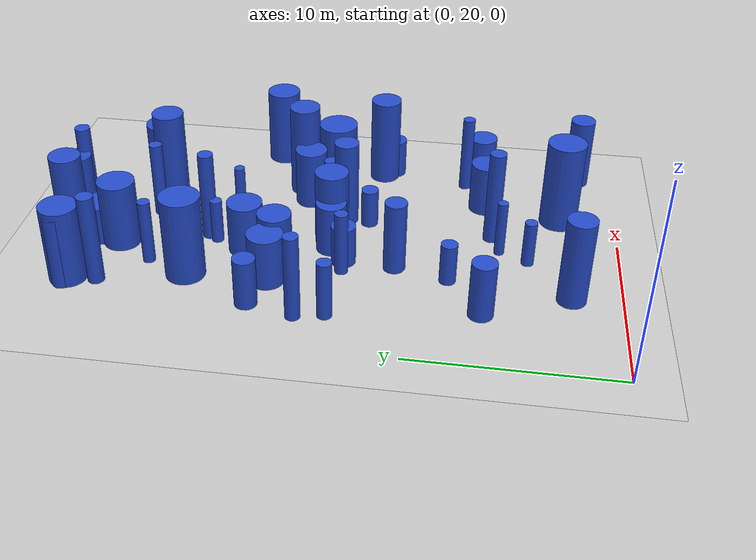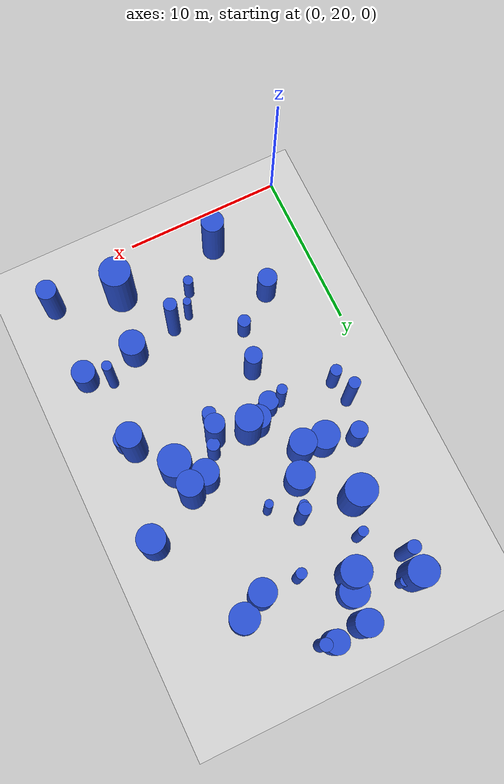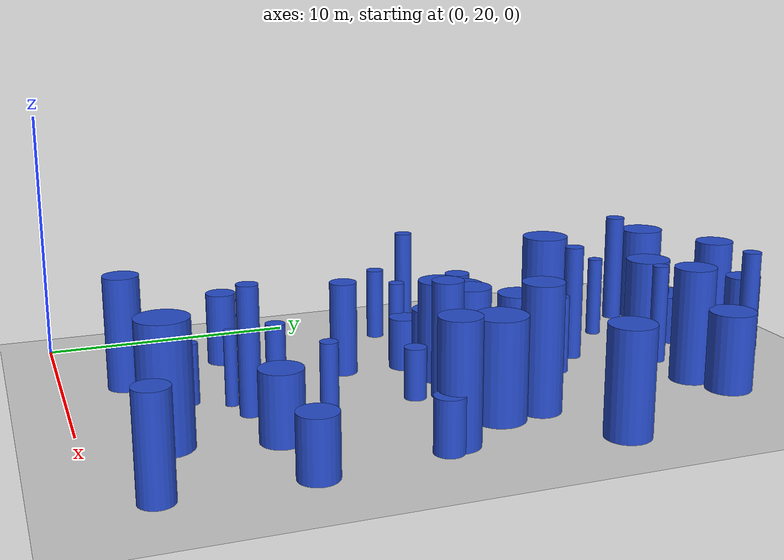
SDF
<sdf version="1.6">
 <world name="default">
  <model name="ground_plane">
   <static>1</static>
   <link name="link">
    <collision name="collision">
     <geometry><plane><normal>0 0 1</normal><size>100 100</size></plane></geometry>
     <surface><friction><ode><mu>100</mu><mu2>50</mu2></ode></friction></surface>
    </collision>
    <visual name="visual">
     <cast_shadows>0</cast_shadows>
     <geometry><plane><normal>0 0 1</normal><size>100 100</size></plane></geometry>
     <material>
      <script><uri>file://media/materials/scripts/gazebo.material</uri><name>Gazebo/Grey</name></script>
     </material>
    </visual>
   </link>
  </model>
  <model name="10">
   <static>0</static>
   <link name="link">
    <inertial>
     <mass>2</mass>
     <inertia>
      <ixx>0.774725</ixx>
      <ixy>0</ixy>
      <ixz>0</ixz>
      <iyy>0.774725</iyy>
      <iyz>0</iyz>
      <izz>0.189763</izz>
     </inertia>
    </inertial>
    <collision name="collision">
     <geometry><cylinder><length>2.01967</length><radius>0.435618</radius></cylinder></geometry>
     <surface><contact><collide_without_contact>1</collide_without_contact></contact></surface>
    </collision>
    <visual name="visual">
     <geometry><cylinder><length>2.01967</length><radius>0.435618</radius></cylinder></geometry>
     <material>
      <script><uri>file://media/materials/scripts/gazebo.material</uri><name>Gazebo/Blue</name></script>
     </material>
    </visual>
    <gravity>0</gravity>
   </link>
   <pose>10.4125 32.5588 1.00983 0 -0 0</pose>
  </model>
  <model name="17">
   <static>0</static>
   <link name="link">
    <inertial>
     <mass>2</mass>
     <inertia><ixx>1.53515</ixx><ixy>0</ixy><ixz>0</ixz><iyy>1.53515</iyy><iyz>0</iyz><izz>0.667989</izz></inertia>
    </inertial>
    <collision name="collision">
     <geometry><cylinder><length>2.68458</length><radius>0.817306</radius></cylinder></geometry>
     <surface><contact><collide_without_contact>1</collide_without_contact></contact></surface>
    </collision>
    <visual name="visual">
     <geometry><cylinder><length>2.68458</length><radius>0.817306</radius></cylinder></geometry>
     <material>
      <script><uri>file://media/materials/scripts/gazebo.material</uri><name>Gazebo/Blue</name></script>
     </material>
    </visual>
    <gravity>0</gravity>
   </link>
   <pose>12.7985 26.728 1.34229 0 -0 0</pose>
  </model>
  <model name="24">
   <static>0</static>
   <link name="link">
    <inertial>
     <mass>2</mass>
     <inertia><ixx>3.77941</ixx><ixy>0</ixy><ixz>0</ixz><iyy>3.77941</iyy><iyz>0</iyz><izz>0.148371</izz></inertia>
    </inertial>
    <collision name="collision">
     <geometry><cylinder><length>4.71502</length><radius>0.38519</radius></cylinder></geometry>
     <surface><contact><collide_without_contact>1</collide_without_contact></contact></surface>
    </collision>
    <visual name="visual">
     <geometry><cylinder><length>4.71502</length><radius>0.38519</radius></cylinder></geometry>
     <material>
      <script><uri>file://media/materials/scripts/gazebo.material</uri><name>Gazebo/Blue</name></script>
     </material>
    </visual>
    <gravity>0</gravity>
   </link>
   <pose>8.12711 40.4296 2.35751 0 -0 0</pose>
  </model>
  <model name="28">
   <static>0</static>
   <link name="link">
    <inertial>
     <mass>2</mass>
     <inertia><ixx>3.02201</ixx><ixy>0</ixy><ixz>0</ixz><iyy>3.02201</iyy><iyz>0</iyz><izz>0.698976</izz></inertia>
    </inertial>
    <collision name="collision">
     <geometry><cylinder><length>4.00439</length><radius>0.836048</radius></cylinder></geometry>
     <surface><contact><collide_without_contact>1</collide_without_contact></contact></surface>
    </collision>
    <visual name="visual">
     <geometry><cylinder><length>4.00439</length><radius>0.836048</radius></cylinder></geometry>
     <material>
      <script><uri>file://media/materials/scripts/gazebo.material</uri><name>Gazebo/Blue</name></script>
     </material>
    </visual>
    <gravity>0</gravity>
   </link>
   <pose>8.59451 34.2473 2.0022 0 -0 0</pose>
  </model>
  <model name="44">
   <static>0</static>
   <link name="link">
    <inertial>
     <mass>2</mass>
     <inertia><ixx>1.89444</ixx><ixy>0</ixy><ixz>0</ixz><iyy>1.89444</iyy><iyz>0</iyz><izz>0.104986</izz></inertia>
    </inertial>
    <collision name="collision">
     <geometry><cylinder><length>3.32441</length><radius>0.324016</radius></cylinder></geometry>
     <surface><contact><collide_without_contact>1</collide_without_contact></contact></surface>
    </collision>
    <visual name="visual">
     <geometry><cylinder><length>3.32441</length><radius>0.324016</radius></cylinder></geometry>
     <material>
      <script><uri>file://media/materials/scripts/gazebo.material</uri><name>Gazebo/Blue</name></script>
     </material>
    </visual>
    <gravity>0</gravity>
   </link>
   <pose>6.01162 33.3985 1.6622 0 -0 0</pose>
  </model>
  <model name="45">
   <static>0</static>
   <link name="link">
    <inertial>
     <mass>2</mass>
     <inertia>
      <ixx>0.842287</ixx>
      <ixy>0</ixy>
      <ixz>0</ixz>
      <iyy>0.842287</iyy>
      <iyz>0</iyz>
      <izz>0.166231</izz>
     </inertia>
    </inertial>
    <collision name="collision">
     <geometry><cylinder><length>2.13425</length><radius>0.407715</radius></cylinder></geometry>
     <surface><contact><collide_without_contact>1</collide_without_contact></contact></surface>
    </collision>
    <visual name="visual">
     <geometry><cylinder><length>2.13425</length><radius>0.407715</radius></cylinder></geometry>
     <material>
      <script><uri>file://media/materials/scripts/gazebo.material</uri><name>Gazebo/Blue</name></script>
     </material>
    </visual>
    <gravity>0</gravity>
   </link>
   <pose>5.99403 28.261 1.06713 0 -0 0</pose>
  </model>
  <model name="47">
   <static>0</static>
   <link name="link">
    <inertial>
     <mass>2</mass>
     <inertia><ixx>4.39041</ixx><ixy>0</ixy><ixz>0</ixz><iyy>4.39041</iyy><iyz>0</iyz><izz>0.626142</izz></inertia>
    </inertial>
    <collision name="collision">
     <geometry><cylinder><length>4.94611</length><radius>0.791291</radius></cylinder></geometry>
     <surface><contact><collide_without_contact>1</collide_without_contact></contact></surface>
    </collision>
    <visual name="visual">
     <geometry><cylinder><length>4.94611</length><radius>0.791291</radius></cylinder></geometry>
     <material>
      <script><uri>file://media/materials/scripts/gazebo.material</uri><name>Gazebo/Blue</name></script>
     </material>
    </visual>
    <gravity>0</gravity>
   </link>
   <pose>13.3403 36.3856 2.47306 0 -0 0</pose>
  </model>
  <model name="51">
   <static>0</static>
   <link name="link">
    <inertial>
     <mass>2</mass>
     <inertia><ixx>2.45508</ixx><ixy>0</ixy><ixz>0</ixz><iyy>2.45508</iyy><iyz>0</iyz><izz>0.2284</izz></inertia>
    </inertial>
    <collision name="collision">
     <geometry><cylinder><length>3.7477</length><radius>0.477912</radius></cylinder></geometry>
     <surface><contact><collide_without_contact>1</collide_without_contact></contact></surface>
    </collision>
    <visual name="visual">
     <geometry><cylinder><length>3.7477</length><radius>0.477912</radius></cylinder></geometry>
     <material>
      <script><uri>file://media/materials/scripts/gazebo.material</uri><name>Gazebo/Blue</name></script>
     </material>
    </visual>
    <gravity>0</gravity>
   </link>
   <pose>3.10571 46.4389 1.87385 0 -0 0</pose>
  </model>
  <model name="59">
   <static>0</static>
   <link name="link">
    <inertial>
     <mass>2</mass>
     <inertia><ixx>3.92698</ixx><ixy>0</ixy><ixz>0</ixz><iyy>3.92698</iyy><iyz>0</iyz><izz>0.61693</izz></inertia>
    </inertial>
    <collision name="collision">
     <geometry><cylinder><length>4.65952</length><radius>0.785449</radius></cylinder></geometry>
     <surface><contact><collide_without_contact>1</collide_without_contact></contact></surface>
    </collision>
    <visual name="visual">
     <geometry><cylinder><length>4.65952</length><radius>0.785449</radius></cylinder></geometry>
     <material>
      <script><uri>file://media/materials/scripts/gazebo.material</uri><name>Gazebo/Blue</name></script>
     </material>
    </visual>
    <gravity>0</gravity>
   </link>
   <pose>15.2975 32.3059 2.32976 0 -0 0</pose>
  </model>
  <model name="60">
   <static>0</static>
   <link name="link">
    <inertial>
     <mass>2</mass>
     <inertia><ixx>1.93141</ixx><ixy>0</ixy><ixz>0</ixz><iyy>1.93141</iyy><iyz>0</iyz><izz>0.684843</izz></inertia>
    </inertial>
    <collision name="collision">
     <geometry><cylinder><length>3.08771</length><radius>0.827552</radius></cylinder></geometry>
     <surface><contact><collide_without_contact>1</collide_without_contact></contact></surface>
    </collision>
    <visual name="visual">
     <geometry><cylinder><length>3.08771</length><radius>0.827552</radius></cylinder></geometry>
     <material>
      <script><uri>file://media/materials/scripts/gazebo.material</uri><name>Gazebo/Blue</name></script>
     </material>
    </visual>
    <gravity>0</gravity>
   </link>
   <pose>12.1888 35.8743 1.54386 0 -0 0</pose>
  </model>
  <model name="67">
   <static>0</static>
   <link name="link">
    <inertial>
     <mass>2</mass>
     <inertia><ixx>3.83548</ixx><ixy>0</ixy><ixz>0</ixz><iyy>3.83548</iyy><iyz>0</iyz><izz>0.673844</izz></inertia>
    </inertial>
    <collision name="collision">
     <geometry><cylinder><length>4.58163</length><radius>0.82088</radius></cylinder></geometry>
     <surface><contact><collide_without_contact>1</collide_without_contact></contact></surface>
    </collision>
    <visual name="visual">
     <geometry><cylinder><length>4.58163</length><radius>0.82088</radius></cylinder></geometry>
     <material>
      <script><uri>file://media/materials/scripts/gazebo.material</uri><name>Gazebo/Blue</name></script>
     </material>
    </visual>
    <gravity>0</gravity>
   </link>
   <pose>12.2633 43.5245 2.29082 0 -0 0</pose>
  </model>
  <model name="70">
   <static>0</static>
   <link name="link">
    <inertial>
     <mass>2</mass>
     <inertia>
      <ixx>1.68909</ixx>
      <ixy>0</ixy>
      <ixz>0</ixz>
      <iyy>1.68909</iyy>
      <iyz>0</iyz>
      <izz>0.0711109</izz>
     </inertia>
    </inertial>
    <collision name="collision">
     <geometry><cylinder><length>3.14979</length><radius>0.266666</radius></cylinder></geometry>
     <surface><contact><collide_without_contact>1</collide_without_contact></contact></surface>
    </collision>
    <visual name="visual">
     <geometry><cylinder><length>3.14979</length><radius>0.266666</radius></cylinder></geometry>
     <material>
      <script><uri>file://media/materials/scripts/gazebo.material</uri><name>Gazebo/Blue</name></script>
     </material>
    </visual>
    <gravity>0</gravity>
   </link>
   <pose>9.67754 39.1381 1.5749 0 -0 0</pose>
  </model>
  <model name="77">
   <static>0</static>
   <link name="link">
    <inertial>
     <mass>2</mass>
     <inertia><ixx>3.29642</ixx><ixy>0</ixy><ixz>0</ixz><iyy>3.29642</iyy><iyz>0</iyz><izz>0.149809</izz></inertia>
    </inertial>
    <collision name="collision">
     <geometry><cylinder><length>4.39648</length><radius>0.387051</radius></cylinder></geometry>
     <surface><contact><collide_without_contact>1</collide_without_contact></contact></surface>
    </collision>
    <visual name="visual">
     <geometry><cylinder><length>4.39648</length><radius>0.387051</radius></cylinder></geometry>
     <material>
      <script><uri>file://media/materials/scripts/gazebo.material</uri><name>Gazebo/Blue</name></script>
     </material>
    </visual>
    <gravity>0</gravity>
   </link>
   <pose>10.3762 47.5174 2.19824 0 -0 0</pose>
  </model>
  <model name="85">
   <static>0</static>
   <link name="link">
    <inertial>
     <mass>2</mass>
     <inertia><ixx>1.16177</ixx><ixy>0</ixy><ixz>0</ixz><iyy>1.16177</iyy><iyz>0</iyz><izz>0.543841</izz></inertia>
    </inertial>
    <collision name="collision">
     <geometry><cylinder><length>2.31065</length><radius>0.737455</radius></cylinder></geometry>
     <surface><contact><collide_without_contact>1</collide_without_contact></contact></surface>
    </collision>
    <visual name="visual">
     <geometry><cylinder><length>2.31065</length><radius>0.737455</radius></cylinder></geometry>
     <material>
      <script><uri>file://media/materials/scripts/gazebo.material</uri><name>Gazebo/Blue</name></script>
     </material>
    </visual>
    <gravity>0</gravity>
   </link>
   <pose>16.1913 27.0229 1.15532 0 -0 0</pose>
  </model>
  <model name="88">
   <static>0</static>
   <link name="link">
    <inertial>
     <mass>2</mass>
     <inertia><ixx>2.86237</ixx><ixy>0</ixy><ixz>0</ixz><iyy>2.86237</iyy><iyz>0</iyz><izz>0.098513</izz></inertia>
    </inertial>
    <collision name="collision">
     <geometry><cylinder><length>4.10837</length><radius>0.313868</radius></cylinder></geometry>
     <surface><contact><collide_without_contact>1</collide_without_contact></contact></surface>
    </collision>
    <visual name="visual">
     <geometry><cylinder><length>4.10837</length><radius>0.313868</radius></cylinder></geometry>
     <material>
      <script><uri>file://media/materials/scripts/gazebo.material</uri><name>Gazebo/Blue</name></script>
     </material>
    </visual>
    <gravity>0</gravity>
   </link>
   <pose>14.7797 27.8503 2.05418 0 -0 0</pose>
  </model>
  <model name="95">
   <static>0</static>
   <link name="link">
    <inertial>
     <mass>2</mass>
     <inertia><ixx>2.62375</ixx><ixy>0</ixy><ixz>0</ixz><iyy>2.62375</iyy><iyz>0</iyz><izz>0.398352</izz></inertia>
    </inertial>
    <collision name="collision">
     <geometry><cylinder><length>3.81411</length><radius>0.631151</radius></cylinder></geometry>
     <surface><contact><collide_without_contact>1</collide_without_contact></contact></surface>
    </collision>
    <visual name="visual">
     <geometry><cylinder><length>3.81411</length><radius>0.631151</radius></cylinder></geometry>
     <material>
      <script><uri>file://media/materials/scripts/gazebo.material</uri><name>Gazebo/Blue</name></script>
     </material>
    </visual>
    <gravity>0</gravity>
   </link>
   <pose>16.1446 21.8435 1.90705 0 -0 0</pose>
  </model>
  <model name="103">
   <static>0</static>
   <link name="link">
    <inertial>
     <mass>2</mass>
     <inertia><ixx>2.52847</ixx><ixy>0</ixy><ixz>0</ixz><iyy>2.52847</iyy><iyz>0</iyz><izz>0.874715</izz></inertia>
    </inertial>
    <collision name="collision">
     <geometry><cylinder><length>3.54213</length><radius>0.935262</radius></cylinder></geometry>
     <surface><contact><collide_without_contact>1</collide_without_contact></contact></surface>
    </collision>
    <visual name="visual">
     <geometry><cylinder><length>3.54213</length><radius>0.935262</radius></cylinder></geometry>
     <material>
      <script><uri>file://media/materials/scripts/gazebo.material</uri><name>Gazebo/Blue</name></script>
     </material>
    </visual>
    <gravity>0</gravity>
   </link>
   <pose>6.94051 44.7004 1.77107 0 -0 0</pose>
  </model>
  <model name="105">
   <static>0</static>
   <link name="link">
    <inertial>
     <mass>2</mass>
     <inertia><ixx>3.61232</ixx><ixy>0</ixy><ixz>0</ixz><iyy>3.61232</iyy><iyz>0</iyz><izz>0.498938</izz></inertia>
    </inertial>
    <collision name="collision">
     <geometry><cylinder><length>4.49189</length><radius>0.706356</radius></cylinder></geometry>
     <surface><contact><collide_without_contact>1</collide_without_contact></contact></surface>
    </collision>
    <visual name="visual">
     <geometry><cylinder><length>4.49189</length><radius>0.706356</radius></cylinder></geometry>
     <material>
      <script><uri>file://media/materials/scripts/gazebo.material</uri><name>Gazebo/Blue</name></script>
     </material>
    </visual>
    <gravity>0</gravity>
   </link>
   <pose>5.34761 22.4274 2.24595 0 -0 0</pose>
  </model>
  <model name="109">
   <static>0</static>
   <link name="link">
    <inertial>
     <mass>2</mass>
     <inertia>
      <ixx>0.949774</ixx>
      <ixy>0</ixy>
      <ixz>0</ixz>
      <iyy>0.949774</iyy>
      <iyz>0</iyz>
      <izz>0.0924293</izz>
     </inertia>
    </inertial>
    <collision name="collision">
     <geometry><cylinder><length>2.32838</length><radius>0.304022</radius></cylinder></geometry>
     <surface><contact><collide_without_contact>1</collide_without_contact></contact></surface>
    </collision>
    <visual name="visual">
     <geometry><cylinder><length>2.32838</length><radius>0.304022</radius></cylinder></geometry>
     <material>
      <script><uri>file://media/materials/scripts/gazebo.material</uri><name>Gazebo/Blue</name></script>
     </material>
    </visual>
    <gravity>0</gravity>
   </link>
   <pose>7.77465 39.9579 1.16419 0 -0 0</pose>
  </model>
  <model name="111">
   <static>0</static>
   <link name="link">
    <inertial>
     <mass>2</mass>
     <inertia><ixx>1.46807</ixx><ixy>0</ixy><ixz>0</ixz><iyy>1.46807</iyy><iyz>0</iyz><izz>0.571442</izz></inertia>
    </inertial>
    <collision name="collision">
     <geometry><cylinder><length>2.66347</length><radius>0.755938</radius></cylinder></geometry>
     <surface><contact><collide_without_contact>1</collide_without_contact></contact></surface>
    </collision>
    <visual name="visual">
     <geometry><cylinder><length>2.66347</length><radius>0.755938</radius></cylinder></geometry>
     <material>
      <script><uri>file://media/materials/scripts/gazebo.material</uri><name>Gazebo/Blue</name></script>
     </material>
    </visual>
    <gravity>0</gravity>
   </link>
   <pose>7.89645 34.1686 1.33174 0 -0 0</pose>
  </model>
  <model name="112">
   <static>0</static>
   <link name="link">
    <inertial>
     <mass>2</mass>
     <inertia><ixx>1.24524</ixx><ixy>0</ixy><ixz>0</ixz><iyy>1.24524</iyy><iyz>0</iyz><izz>0.298264</izz></inertia>
    </inertial>
    <collision name="collision">
     <geometry><cylinder><length>2.56449</length><radius>0.546136</radius></cylinder></geometry>
     <surface><contact><collide_without_contact>1</collide_without_contact></contact></surface>
    </collision>
    <visual name="visual">
     <geometry><cylinder><length>2.56449</length><radius>0.546136</radius></cylinder></geometry>
     <material>
      <script><uri>file://media/materials/scripts/gazebo.material</uri><name>Gazebo/Blue</name></script>
     </material>
    </visual>
    <gravity>0</gravity>
   </link>
   <pose>2.86458 37.4236 1.28225 0 -0 0</pose>
  </model>
  <model name="115">
   <static>0</static>
   <link name="link">
    <inertial>
     <mass>2</mass>
     <inertia><ixx>3.6437</ixx><ixy>0</ixy><ixz>0</ixz><iyy>3.6437</iyy><iyz>0</iyz><izz>0.381318</izz></inertia>
    </inertial>
    <collision name="collision">
     <geometry><cylinder><length>4.55173</length><radius>0.61751</radius></cylinder></geometry>
     <surface><contact><collide_without_contact>1</collide_without_contact></contact></surface>
    </collision>
    <visual name="visual">
     <geometry><cylinder><length>4.55173</length><radius>0.61751</radius></cylinder></geometry>
     <material>
      <script><uri>file://media/materials/scripts/gazebo.material</uri><name>Gazebo/Blue</name></script>
     </material>
    </visual>
    <gravity>0</gravity>
   </link>
   <pose>10.5925 33.7909 2.27586 0 -0 0</pose>
  </model>
  <model name="119">
   <static>0</static>
   <link name="link">
    <inertial>
     <mass>2</mass>
     <inertia><ixx>4.1708</ixx><ixy>0</ixy><ixz>0</ixz><iyy>4.1708</iyy><iyz>0</iyz><izz>0.167894</izz></inertia>
    </inertial>
    <collision name="collision">
     <geometry><cylinder><length>4.95188</length><radius>0.409748</radius></cylinder></geometry>
     <surface><contact><collide_without_contact>1</collide_without_contact></contact></surface>
    </collision>
    <visual name="visual">
     <geometry><cylinder><length>4.95188</length><radius>0.409748</radius></cylinder></geometry>
     <material>
      <script><uri>file://media/materials/scripts/gazebo.material</uri><name>Gazebo/Blue</name></script>
     </material>
    </visual>
    <gravity>0</gravity>
   </link>
   <pose>9.91773 26.2895 2.47594 0 -0 0</pose>
  </model>
  <model name="124">
   <static>0</static>
   <link name="link">
    <inertial>
     <mass>2</mass>
     <inertia><ixx>1.56828</ixx><ixy>0</ixy><ixz>0</ixz><iyy>1.56828</iyy><iyz>0</iyz><izz>0.792169</izz></inertia>
    </inertial>
    <collision name="collision">
     <geometry><cylinder><length>2.65201</length><radius>0.890039</radius></cylinder></geometry>
     <surface><contact><collide_without_contact>1</collide_without_contact></contact></surface>
    </collision>
    <visual name="visual">
     <geometry><cylinder><length>2.65201</length><radius>0.890039</radius></cylinder></geometry>
     <material>
      <script><uri>file://media/materials/scripts/gazebo.material</uri><name>Gazebo/Blue</name></script>
     </material>
    </visual>
    <gravity>0</gravity>
   </link>
   <pose>4.8166 36.845 1.32601 0 -0 0</pose>
  </model>
  <model name="127">
   <static>0</static>
   <link name="link">
    <inertial>
     <mass>2</mass>
     <inertia><ixx>3.22287</ixx><ixy>0</ixy><ixz>0</ixz><iyy>3.22287</iyy><iyz>0</iyz><izz>0.762799</izz></inertia>
    </inertial>
    <collision name="collision">
     <geometry><cylinder><length>4.12902</length><radius>0.873384</radius></cylinder></geometry>
     <surface><contact><collide_without_contact>1</collide_without_contact></contact></surface>
    </collision>
    <visual name="visual">
     <geometry><cylinder><length>4.12902</length><radius>0.873384</radius></cylinder></geometry>
     <material>
      <script><uri>file://media/materials/scripts/gazebo.material</uri><name>Gazebo/Blue</name></script>
     </material>
    </visual>
    <gravity>0</gravity>
   </link>
   <pose>16.6059 38.1571 2.06451 0 -0 0</pose>
  </model>
  <model name="132">
   <static>0</static>
   <link name="link">
    <inertial>
     <mass>2</mass>
     <inertia><ixx>1.61534</ixx><ixy>0</ixy><ixz>0</ixz><iyy>1.61534</iyy><iyz>0</iyz><izz>0.365131</izz></inertia>
    </inertial>
    <collision name="collision">
     <geometry><cylinder><length>2.93201</length><radius>0.604261</radius></cylinder></geometry>
     <surface><contact><collide_without_contact>1</collide_without_contact></contact></surface>
    </collision>
    <visual name="visual">
     <geometry><cylinder><length>2.93201</length><radius>0.604261</radius></cylinder></geometry>
     <material>
      <script><uri>file://media/materials/scripts/gazebo.material</uri><name>Gazebo/Blue</name></script>
     </material>
    </visual>
    <gravity>0</gravity>
   </link>
   <pose>3.6225 26.5939 1.466 0 -0 0</pose>
  </model>
  <model name="136">
   <static>0</static>
   <link name="link">
    <inertial>
     <mass>2</mass>
     <inertia><ixx>3.70332</ixx><ixy>0</ixy><ixz>0</ixz><iyy>3.70332</iyy><iyz>0</iyz><izz>0.955801</izz></inertia>
    </inertial>
    <collision name="collision">
     <geometry><cylinder><length>4.39915</length><radius>0.977651</radius></cylinder></geometry>
     <surface><contact><collide_without_contact>1</collide_without_contact></contact></surface>
    </collision>
    <visual name="visual">
     <geometry><cylinder><length>4.39915</length><radius>0.977651</radius></cylinder></geometry>
     <material>
      <script><uri>file://media/materials/scripts/gazebo.material</uri><name>Gazebo/Blue</name></script>
     </material>
    </visual>
    <gravity>0</gravity>
   </link>
   <pose>4.72085 40.8118 2.19957 0 -0 0</pose>
  </model>
  <model name="144">
   <static>0</static>
   <link name="link">
    <inertial>
     <mass>2</mass>
     <inertia><ixx>1.62736</ixx><ixy>0</ixy><ixz>0</ixz><iyy>1.62736</iyy><iyz>0</iyz><izz>0.775463</izz></inertia>
    </inertial>
    <collision name="collision">
     <geometry><cylinder><length>2.72723</length><radius>0.880604</radius></cylinder></geometry>
     <surface><contact><collide_without_contact>1</collide_without_contact></contact></surface>
    </collision>
    <visual name="visual">
     <geometry><cylinder><length>2.72723</length><radius>0.880604</radius></cylinder></geometry>
     <material>
      <script><uri>file://media/materials/scripts/gazebo.material</uri><name>Gazebo/Blue</name></script>
     </material>
    </visual>
    <gravity>0</gravity>
   </link>
   <pose>7.22925 38.3606 1.36361 0 -0 0</pose>
  </model>
  <model name="149">
   <static>0</static>
   <link name="link">
    <inertial>
     <mass>2</mass>
     <inertia>
      <ixx>1.56013</ixx>
      <ixy>0</ixy>
      <ixz>0</ixz>
      <iyy>1.56013</iyy>
      <iyz>0</iyz>
      <izz>0.0696492</izz>
     </inertia>
    </inertial>
    <collision name="collision">
     <geometry><cylinder><length>3.0252</length><radius>0.263911</radius></cylinder></geometry>
     <surface><contact><collide_without_contact>1</collide_without_contact></contact></surface>
    </collision>
    <visual name="visual">
     <geometry><cylinder><length>3.0252</length><radius>0.263911</radius></cylinder></geometry>
     <material>
      <script><uri>file://media/materials/scripts/gazebo.material</uri><name>Gazebo/Blue</name></script>
     </material>
    </visual>
    <gravity>0</gravity>
   </link>
   <pose>4.93171 40.2692 1.5126 0 -0 0</pose>
  </model>
  <model name="150">
   <static>0</static>
   <link name="link">
    <inertial>
     <mass>2</mass>
     <inertia>
      <ixx>0.989811</ixx>
      <ixy>0</ixy>
      <ixz>0</ixz>
      <iyy>0.989811</iyy>
      <iyz>0</iyz>
      <izz>0.088194</izz>
     </inertia>
    </inertial>
    <collision name="collision">
     <geometry><cylinder><length>2.38208</length><radius>0.296975</radius></cylinder></geometry>
     <surface><contact><collide_without_contact>1</collide_without_contact></contact></surface>
    </collision>
    <visual name="visual">
     <geometry><cylinder><length>2.38208</length><radius>0.296975</radius></cylinder></geometry>
     <material>
      <script><uri>file://media/materials/scripts/gazebo.material</uri><name>Gazebo/Blue</name></script>
     </material>
    </visual>
    <gravity>0</gravity>
   </link>
   <pose>4.71128 41.4967 1.19104 0 -0 0</pose>
  </model>
  <model name="153">
   <static>0</static>
   <link name="link">
    <inertial>
     <mass>2</mass>
     <inertia>
      <ixx>1.95078</ixx>
      <ixy>0</ixy>
      <ixz>0</ixz>
      <iyy>1.95078</iyy>
      <iyz>0</iyz>
      <izz>0.0955632</izz>
     </inertia>
    </inertial>
    <collision name="collision">
     <geometry><cylinder><length>3.37906</length><radius>0.309133</radius></cylinder></geometry>
     <surface><contact><collide_without_contact>1</collide_without_contact></contact></surface>
    </collision>
    <visual name="visual">
     <geometry><cylinder><length>3.37906</length><radius>0.309133</radius></cylinder></geometry>
     <material>
      <script><uri>file://media/materials/scripts/gazebo.material</uri><name>Gazebo/Blue</name></script>
     </material>
    </visual>
    <gravity>0</gravity>
   </link>
   <pose>5.55025 42.8779 1.68953 0 -0 0</pose>
  </model>
  <model name="161">
   <static>0</static>
   <link name="link">
    <inertial>
     <mass>2</mass>
     <inertia><ixx>3.76279</ixx><ixy>0</ixy><ixz>0</ixz><iyy>3.76279</iyy><iyz>0</iyz><izz>0.168409</izz></inertia>
    </inertial>
    <collision name="collision">
     <geometry><cylinder><length>4.69803</length><radius>0.410377</radius></cylinder></geometry>
     <surface><contact><collide_without_contact>1</collide_without_contact></contact></surface>
    </collision>
    <visual name="visual">
     <geometry><cylinder><length>4.69803</length><radius>0.410377</radius></cylinder></geometry>
     <material>
      <script><uri>file://media/materials/scripts/gazebo.material</uri><name>Gazebo/Blue</name></script>
     </material>
    </visual>
    <gravity>0</gravity>
   </link>
   <pose>3.6196 44.9291 2.34902 0 -0 0</pose>
  </model>
  <model name="163">
   <static>0</static>
   <link name="link">
    <inertial>
     <mass>2</mass>
     <inertia>
      <ixx>0.925012</ixx>
      <ixy>0</ixy>
      <ixz>0</ixz>
      <iyy>0.925012</iyy>
      <iyz>0</iyz>
      <izz>0.377759</izz>
     </inertia>
    </inertial>
    <collision name="collision">
     <geometry><cylinder><length>2.10162</length><radius>0.614621</radius></cylinder></geometry>
     <surface><contact><collide_without_contact>1</collide_without_contact></contact></surface>
    </collision>
    <visual name="visual">
     <geometry><cylinder><length>2.10162</length><radius>0.614621</radius></cylinder></geometry>
     <material>
      <script><uri>file://media/materials/scripts/gazebo.material</uri><name>Gazebo/Blue</name></script>
     </material>
    </visual>
    <gravity>0</gravity>
   </link>
   <pose>6.85279 33.4181 1.05081 0 -0 0</pose>
  </model>
  <model name="164">
   <static>0</static>
   <link name="link">
    <inertial>
     <mass>2</mass>
     <inertia>
      <ixx>1.45372</ixx>
      <ixy>0</ixy>
      <ixz>0</ixz>
      <iyy>1.45372</iyy>
      <iyz>0</iyz>
      <izz>0.0647348</izz>
     </inertia>
    </inertial>
    <collision name="collision">
     <geometry><cylinder><length>2.92029</length><radius>0.25443</radius></cylinder></geometry>
     <surface><contact><collide_without_contact>1</collide_without_contact></contact></surface>
    </collision>
    <visual name="visual">
     <geometry><cylinder><length>2.92029</length><radius>0.25443</radius></cylinder></geometry>
     <material>
      <script><uri>file://media/materials/scripts/gazebo.material</uri><name>Gazebo/Blue</name></script>
     </material>
    </visual>
    <gravity>0</gravity>
   </link>
   <pose>8.71199 25.8672 1.46014 0 -0 0</pose>
  </model>
  <model name="175">
   <static>0</static>
   <link name="link">
    <inertial>
     <mass>2</mass>
     <inertia><ixx>2.04164</ixx><ixy>0</ixy><ixz>0</ixz><iyy>2.04164</iyy><iyz>0</iyz><izz>0.831871</izz></inertia>
    </inertial>
    <collision name="collision">
     <geometry><cylinder><length>3.12318</length><radius>0.91207</radius></cylinder></geometry>
     <surface><contact><collide_without_contact>1</collide_without_contact></contact></surface>
    </collision>
    <visual name="visual">
     <geometry><cylinder><length>3.12318</length><radius>0.91207</radius></cylinder></geometry>
     <material>
      <script><uri>file://media/materials/scripts/gazebo.material</uri><name>Gazebo/Blue</name></script>
     </material>
    </visual>
    <gravity>0</gravity>
   </link>
   <pose>13.7304 44.3128 1.56159 0 -0 0</pose>
  </model>
  <model name="191">
   <static>0</static>
   <link name="link">
    <inertial>
     <mass>2</mass>
     <inertia><ixx>2.78748</ixx><ixy>0</ixy><ixz>0</ixz><iyy>2.78748</iyy><iyz>0</iyz><izz>0.109121</izz></inertia>
    </inertial>
    <collision name="collision">
     <geometry><cylinder><length>4.04939</length><radius>0.330335</radius></cylinder></geometry>
     <surface><contact><collide_without_contact>1</collide_without_contact></contact></surface>
    </collision>
    <visual name="visual">
     <geometry><cylinder><length>4.04939</length><radius>0.330335</radius></cylinder></geometry>
     <material>
      <script><uri>file://media/materials/scripts/gazebo.material</uri><name>Gazebo/Blue</name></script>
     </material>
    </visual>
    <gravity>0</gravity>
   </link>
   <pose>9.8422 43.5022 2.02469 0 -0 0</pose>
  </model>
  <model name="198">
   <static>0</static>
   <link name="link">
    <inertial>
     <mass>2</mass>
     <inertia><ixx>1.55105</ixx><ixy>0</ixy><ixz>0</ixz><iyy>1.55105</iyy><iyz>0</iyz><izz>0.133305</izz></inertia>
    </inertial>
    <collision name="collision">
     <geometry><cylinder><length>2.98436</length><radius>0.36511</radius></cylinder></geometry>
     <surface><contact><collide_without_contact>1</collide_without_contact></contact></surface>
    </collision>
    <visual name="visual">
     <geometry><cylinder><length>2.98436</length><radius>0.36511</radius></cylinder></geometry>
     <material>
      <script><uri>file://media/materials/scripts/gazebo.material</uri><name>Gazebo/Blue</name></script>
     </material>
    </visual>
    <gravity>0</gravity>
   </link>
   <pose>2.51742 33.665 1.49218 0 -0 0</pose>
  </model>
  <model name="201">
   <static>0</static>
   <link name="link">
    <inertial>
     <mass>2</mass>
     <inertia><ixx>1.10359</ixx><ixy>0</ixy><ixz>0</ixz><iyy>1.10359</iyy><iyz>0</iyz><izz>0.841668</izz></inertia>
    </inertial>
    <collision name="collision">
     <geometry><cylinder><length>2.024</length><radius>0.917424</radius></cylinder></geometry>
     <surface><contact><collide_without_contact>1</collide_without_contact></contact></surface>
    </collision>
    <visual name="visual">
     <geometry><cylinder><length>2.024</length><radius>0.917424</radius></cylinder></geometry>
     <material>
      <script><uri>file://media/materials/scripts/gazebo.material</uri><name>Gazebo/Blue</name></script>
     </material>
    </visual>
    <gravity>0</gravity>
   </link>
   <pose>7.36399 45.673 1.012 0 -0 0</pose>
  </model>
  <model name="209">
   <static>0</static>
   <link name="link">
    <inertial>
     <mass>2</mass>
     <inertia>
      <ixx>0.868833</ixx>
      <ixy>0</ixy>
      <ixz>0</ixz>
      <iyy>0.868833</iyy>
      <iyz>0</iyz>
      <izz>0.327499</izz>
     </inertia>
    </inertial>
    <collision name="collision">
     <geometry><cylinder><length>2.05682</length><radius>0.572276</radius></cylinder></geometry>
     <surface><contact><collide_without_contact>1</collide_without_contact></contact></surface>
    </collision>
    <visual name="visual">
     <geometry><cylinder><length>2.05682</length><radius>0.572276</radius></cylinder></geometry>
     <material>
      <script><uri>file://media/materials/scripts/gazebo.material</uri><name>Gazebo/Blue</name></script>
     </material>
    </visual>
    <gravity>0</gravity>
   </link>
   <pose>15.7369 31.7663 1.02841 0 -0 0</pose>
  </model>
  <model name="213">
   <static>0</static>
   <link name="link">
    <inertial>
     <mass>2</mass>
     <inertia><ixx>3.3631</ixx><ixy>0</ixy><ixz>0</ixz><iyy>3.3631</iyy><iyz>0</iyz><izz>0.133326</izz></inertia>
    </inertial>
    <collision name="collision">
     <geometry><cylinder><length>4.44731</length><radius>0.365139</radius></cylinder></geometry>
     <surface><contact><collide_without_contact>1</collide_without_contact></contact></surface>
    </collision>
    <visual name="visual">
     <geometry><cylinder><length>4.44731</length><radius>0.365139</radius></cylinder></geometry>
     <material>
      <script><uri>file://media/materials/scripts/gazebo.material</uri><name>Gazebo/Blue</name></script>
     </material>
    </visual>
    <gravity>0</gravity>
   </link>
   <pose>2.21908 35.095 2.22366 0 -0 0</pose>
  </model>
  <model name="214">
   <static>0</static>
   <link name="link">
    <inertial>
     <mass>2</mass>
     <inertia><ixx>4.10272</ixx><ixy>0</ixy><ixz>0</ixz><iyy>4.10272</iyy><iyz>0</iyz><izz>0.934461</izz></inertia>
    </inertial>
    <collision name="collision">
     <geometry><cylinder><length>4.67043</length><radius>0.966675</radius></cylinder></geometry>
     <surface><contact><collide_without_contact>1</collide_without_contact></contact></surface>
    </collision>
    <visual name="visual">
     <geometry><cylinder><length>4.67043</length><radius>0.966675</radius></cylinder></geometry>
     <material>
      <script><uri>file://media/materials/scripts/gazebo.material</uri><name>Gazebo/Blue</name></script>
     </material>
    </visual>
    <gravity>0</gravity>
   </link>
   <pose>11.9987 22.9 2.33522 0 -0 0</pose>
  </model>
  <model name="217">
   <static>0</static>
   <link name="link">
    <inertial>
     <mass>2</mass>
     <inertia>
      <ixx>0.720912</ixx>
      <ixy>0</ixy>
      <ixz>0</ixz>
      <iyy>0.720912</iyy>
      <iyz>0</iyz>
      <izz>0.0930883</izz>
     </inertia>
    </inertial>
    <collision name="collision">
     <geometry><cylinder><length>2.01152</length><radius>0.305104</radius></cylinder></geometry>
     <surface><contact><collide_without_contact>1</collide_without_contact></contact></surface>
    </collision>
    <visual name="visual">
     <geometry><cylinder><length>2.01152</length><radius>0.305104</radius></cylinder></geometry>
     <material>
      <script><uri>file://media/materials/scripts/gazebo.material</uri><name>Gazebo/Blue</name></script>
     </material>
    </visual>
    <gravity>0</gravity>
   </link>
   <pose>4.47146 46.3874 1.00576 0 -0 0</pose>
  </model>
  <model name="220">
   <static>0</static>
   <link name="link">
    <inertial>
     <mass>2</mass>
     <inertia><ixx>1.72789</ixx><ixy>0</ixy><ixz>0</ixz><iyy>1.72789</iyy><iyz>0</iyz><izz>0.15882</izz></inertia>
    </inertial>
    <collision name="collision">
     <geometry><cylinder><length>3.14497</length><radius>0.398523</radius></cylinder></geometry>
     <surface><contact><collide_without_contact>1</collide_without_contact></contact></surface>
    </collision>
    <visual name="visual">
     <geometry><cylinder><length>3.14497</length><radius>0.398523</radius></cylinder></geometry>
     <material>
      <script><uri>file://media/materials/scripts/gazebo.material</uri><name>Gazebo/Blue</name></script>
     </material>
    </visual>
    <gravity>0</gravity>
   </link>
   <pose>11.0817 34.6108 1.57249 0 -0 0</pose>
  </model>
  <model name="224">
   <static>0</static>
   <link name="link">
    <inertial>
     <mass>2</mass>
     <inertia>
      <ixx>0.99293</ixx>
      <ixy>0</ixy>
      <ixz>0</ixz>
      <iyy>0.99293</iyy>
      <iyz>0</iyz>
      <izz>0.0959306</izz>
     </inertia>
    </inertial>
    <collision name="collision">
     <geometry><cylinder><length>2.38113</length><radius>0.309727</radius></cylinder></geometry>
     <surface><contact><collide_without_contact>1</collide_without_contact></contact></surface>
    </collision>
    <visual name="visual">
     <geometry><cylinder><length>2.38113</length><radius>0.309727</radius></cylinder></geometry>
     <material>
      <script><uri>file://media/materials/scripts/gazebo.material</uri><name>Gazebo/Blue</name></script>
     </material>
    </visual>
    <gravity>0</gravity>
   </link>
   <pose>8.02064 24.4742 1.19057 0 -0 0</pose>
  </model>
  <model name="228">
   <static>0</static>
   <link name="link">
    <inertial>
     <mass>2</mass>
     <inertia><ixx>3.16618</ixx><ixy>0</ixy><ixz>0</ixz><iyy>3.16618</iyy><iyz>0</iyz><izz>0.858592</izz></inertia>
    </inertial>
    <collision name="collision">
     <geometry><cylinder><length>4.05232</length><radius>0.926602</radius></cylinder></geometry>
     <surface><contact><collide_without_contact>1</collide_without_contact></contact></surface>
    </collision>
    <visual name="visual">
     <geometry><cylinder><length>4.05232</length><radius>0.926602</radius></cylinder></geometry>
     <material>
      <script><uri>file://media/materials/scripts/gazebo.material</uri><name>Gazebo/Blue</name></script>
     </material>
    </visual>
    <gravity>0</gravity>
   </link>
   <pose>3.64013 46.3281 2.02616 0 -0 0</pose>
  </model>
  <model name="233">
   <static>0</static>
   <link name="link">
    <inertial>
     <mass>2</mass>
     <inertia><ixx>3.37901</ixx><ixy>0</ixy><ixz>0</ixz><iyy>3.37901</iyy><iyz>0</iyz><izz>0.638213</izz></inertia>
    </inertial>
    <collision name="collision">
     <geometry><cylinder><length>4.28479</length><radius>0.798883</radius></cylinder></geometry>
     <surface><contact><collide_without_contact>1</collide_without_contact></contact></surface>
    </collision>
    <visual name="visual">
     <geometry><cylinder><length>4.28479</length><radius>0.798883</radius></cylinder></geometry>
     <material>
      <script><uri>file://media/materials/scripts/gazebo.material</uri><name>Gazebo/Blue</name></script>
     </material>
    </visual>
    <gravity>0</gravity>
   </link>
   <pose>7.70317 47.4986 2.14239 0 -0 0</pose>
  </model>
  <model name="241">
   <static>0</static>
   <link name="link">
    <inertial>
     <mass>2</mass>
     <inertia><ixx>2.50437</ixx><ixy>0</ixy><ixz>0</ixz><iyy>2.50437</iyy><iyz>0</iyz><izz>0.295767</izz></inertia>
    </inertial>
    <collision name="collision">
     <geometry><cylinder><length>3.76017</length><radius>0.543845</radius></cylinder></geometry>
     <surface><contact><collide_without_contact>1</collide_without_contact></contact></surface>
    </collision>
    <visual name="visual">
     <geometry><cylinder><length>3.76017</length><radius>0.543845</radius></cylinder></geometry>
     <material>
      <script><uri>file://media/materials/scripts/gazebo.material</uri><name>Gazebo/Blue</name></script>
     </material>
    </visual>
    <gravity>0</gravity>
   </link>
   <pose>6.67994 30.8942 1.88009 0 -0 0</pose>
  </model>
  <model name="244">
   <static>0</static>
   <link name="link">
    <inertial>
     <mass>2</mass>
     <inertia><ixx>1.74262</ixx><ixy>0</ixy><ixz>0</ixz><iyy>1.74262</iyy><iyz>0</iyz><izz>0.701645</izz></inertia>
    </inertial>
    <collision name="collision">
     <geometry><cylinder><length>2.88977</length><radius>0.837642</radius></cylinder></geometry>
     <surface><contact><collide_without_contact>1</collide_without_contact></contact></surface>
    </collision>
    <visual name="visual">
     <geometry><cylinder><length>2.88977</length><radius>0.837642</radius></cylinder></geometry>
     <material>
      <script><uri>file://media/materials/scripts/gazebo.material</uri><name>Gazebo/Blue</name></script>
     </material>
    </visual>
    <gravity>0</gravity>
   </link>
   <pose>6.22746 36.6822 1.44489 0 -0 0</pose>
  </model>
  <model name="245">
   <static>0</static>
   <link name="link">
    <inertial>
     <mass>2</mass>
     <inertia><ixx>3.09479</ixx><ixy>0</ixy><ixz>0</ixz><iyy>3.09479</iyy><iyz>0</iyz><izz>0.995737</izz></inertia>
    </inertial>
    <collision name="collision">
     <geometry><cylinder><length>3.94735</length><radius>0.997866</radius></cylinder></geometry>
     <surface><contact><collide_without_contact>1</collide_without_contact></contact></surface>
    </collision>
    <visual name="visual">
     <geometry><cylinder><length>3.94735</length><radius>0.997866</radius></cylinder></geometry>
     <material>
      <script><uri>file://media/materials/scripts/gazebo.material</uri><name>Gazebo/Blue</name></script>
     </material>
    </visual>
    <gravity>0</gravity>
   </link>
   <pose>13.551 34.6415 1.97367 0 -0 0</pose>
  </model>
  <model name="249">
   <static>0</static>
   <link name="link">
    <inertial>
     <mass>2</mass>
     <inertia><ixx>1.94318</ixx><ixy>0</ixy><ixz>0</ixz><iyy>1.94318</iyy><iyz>0</iyz><izz>0.526208</izz></inertia>
    </inertial>
    <collision name="collision">
     <geometry><cylinder><length>3.17497</length><radius>0.725402</radius></cylinder></geometry>
     <surface><contact><collide_without_contact>1</collide_without_contact></contact></surface>
    </collision>
    <visual name="visual">
     <geometry><cylinder><length>3.17497</length><radius>0.725402</radius></cylinder></geometry>
     <material>
      <script><uri>file://media/materials/scripts/gazebo.material</uri><name>Gazebo/Blue</name></script>
     </material>
    </visual>
    <gravity>0</gravity>
   </link>
   <pose>9.62949 47.6964 1.58749 0 -0 0</pose>
  </model>
 </world>
</sdf>
